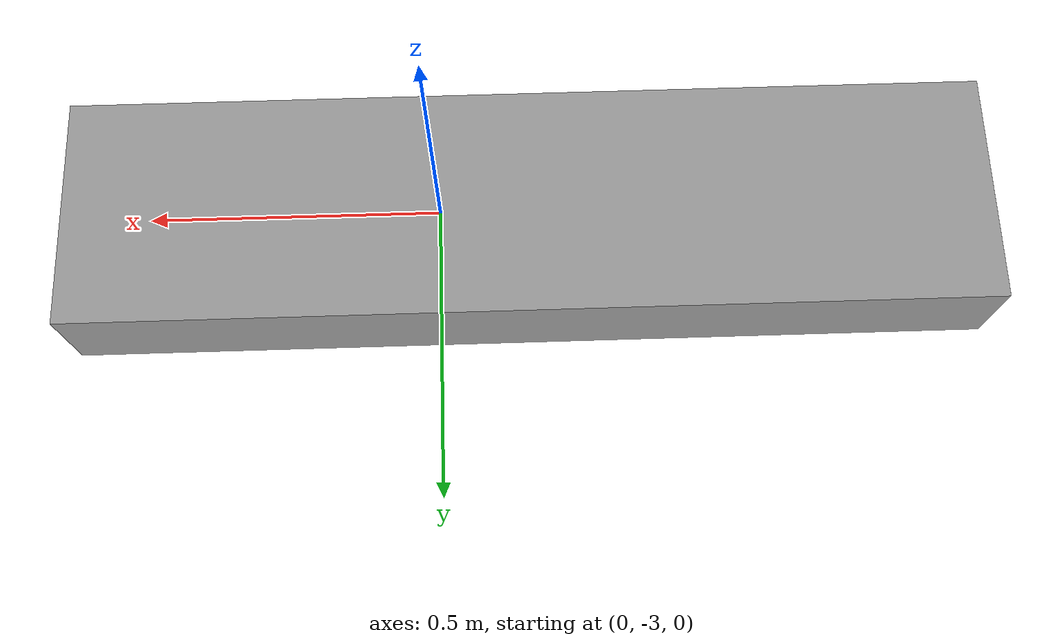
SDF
<?xml version='1.0'?>
<sdf version='1.6'>
  <model name='pallet_built'>
    <pose frame=''>-0.15 -2.95 0 0 -0 0</pose>
    <link name='Stairs_1'>
      <visual name='Stairs_1_Visual_0'>
        <pose frame=''>-0 0 0.08 0 -0 0</pose>
        <geometry>
          <box>
            <size>1.5 0.38 0.16</size>
          </box>
        </geometry>
        <material>
          <script>
            <uri>file://media/materials/scripts/gazebo.material</uri>
            <name>Gazebo/Grey</name>
          </script>
          <ambient>1 1 1 1</ambient>
        </material>
      </visual>
      <collision name='Stairs_1_Collision_0'>
        <geometry>
          <box>
            <size>1.5 0.38 0.16</size>
          </box>
        </geometry>
        <pose frame=''>-0 0 0.08 0 -0 0</pose>
      </collision>
    </link>
    <static>1</static>
  </model>
</sdf>
